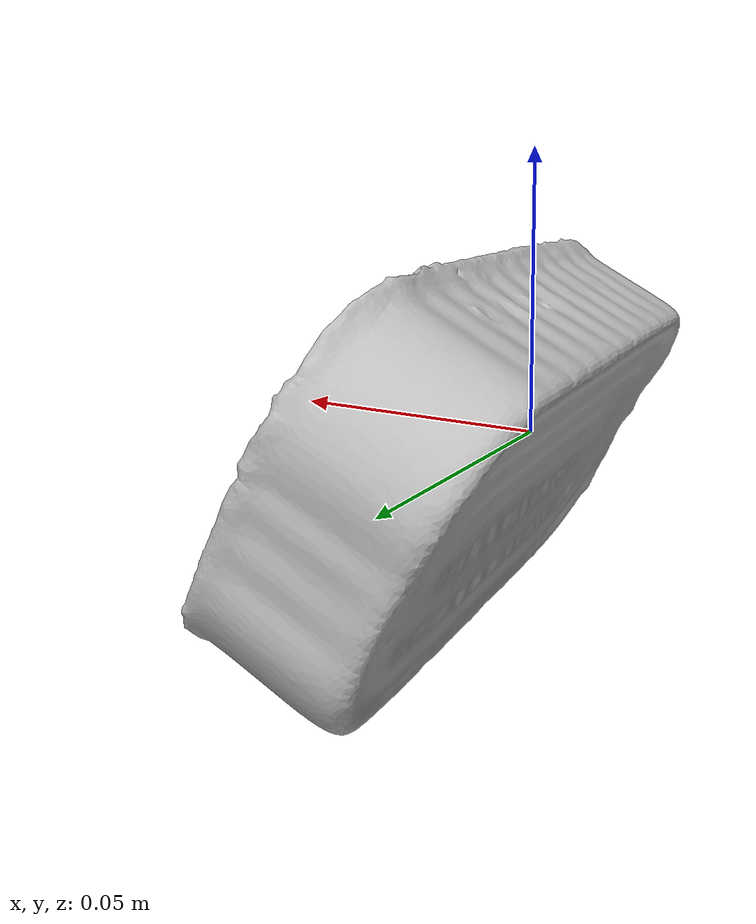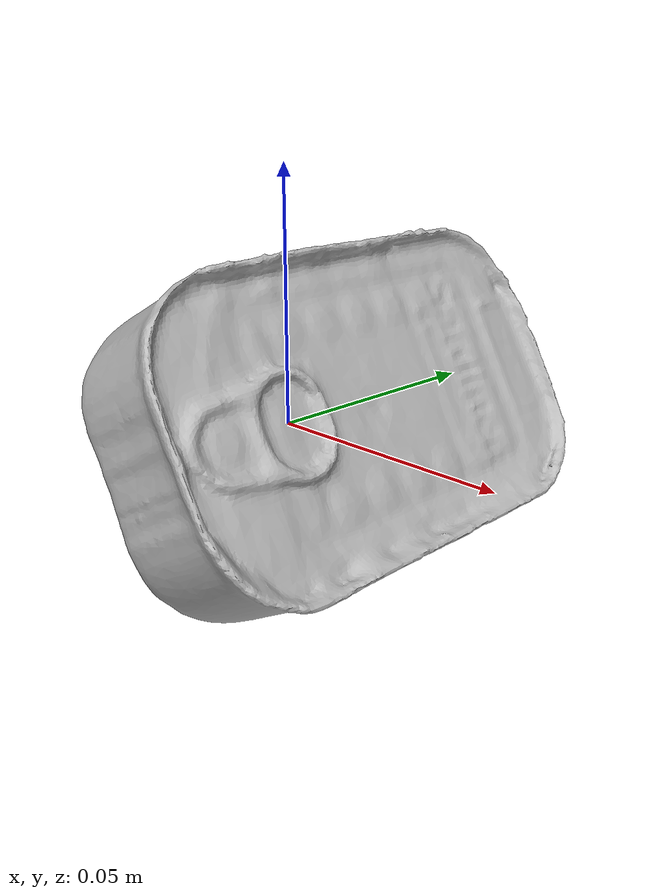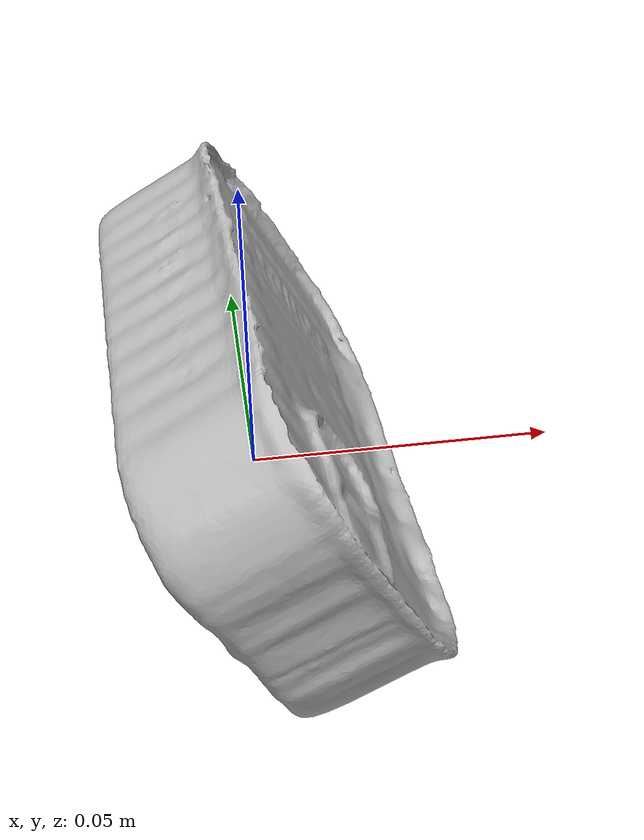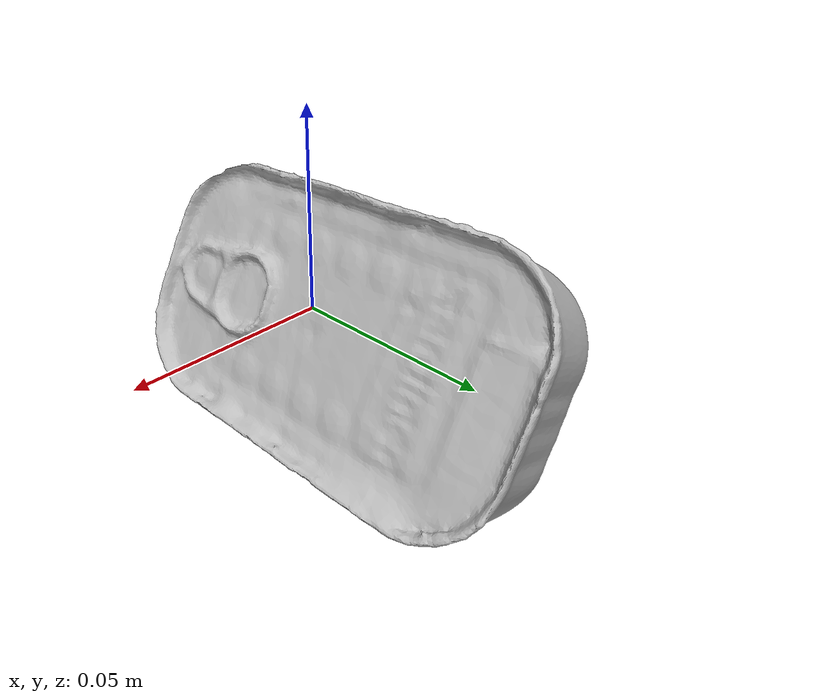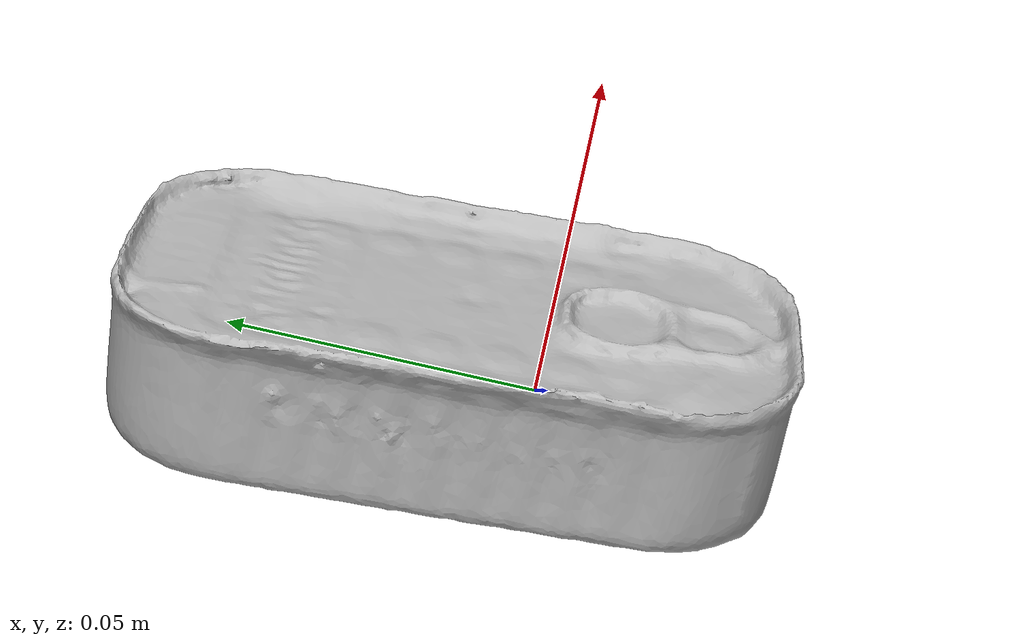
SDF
<?xml version='1.0'?>
<sdf version="1.4">
  <model name="SardinesCan">
    <static>false</static>
    <link name="link">
      <inertial>
        <pose>0.0029618182048520834 0.014039208801381164 -0.00013866986999914224 1.586197275985518 0.4853381833550162 -3.079635513514707</pose>
        <mass>0.0161979424520672</mass>
        <inertia>
          <ixx>1.8223136812212755e-05</ixx>
          <ixy>-2.203616242350468e-21</ixy>
          <ixz>1.1055772274930046e-21</ixz>
          <iyy>1.4502564802870625e-05</iyy>
          <iyz>-1.9885661483527917e-21</iyz>
          <izz>5.62586492780817e-06</izz>
        </inertia>
      </inertial>
      <collision name="collision">
        <geometry>
          <mesh>
            <!-- Use a downsampled mesh for collisions -->
            <uri>model:///SardinesCan/SardinesCan_250_collision.obj</uri>
	        </mesh>
        </geometry>
        <surface>
      </surface>
      </collision>
      <visual name="visual">
        <geometry>
          <mesh>
            <uri>model:///SardinesCan/SardinesCan_25k_tex.obj</uri>
	        </mesh>
        </geometry>
        <material>
          <script>
            <uri>model:///SardinesCan/SardinesCan.material</uri>
            <name>SardinesCan</name>
          </script>
        </material>
      </visual>
    </link>
  </model>
</sdf>
